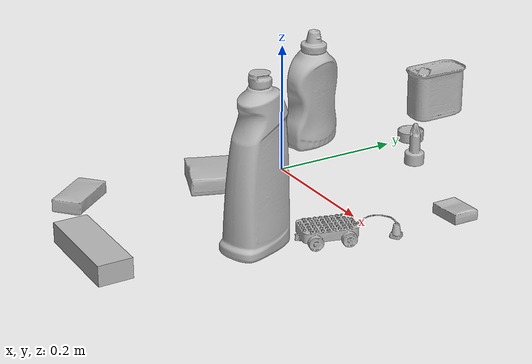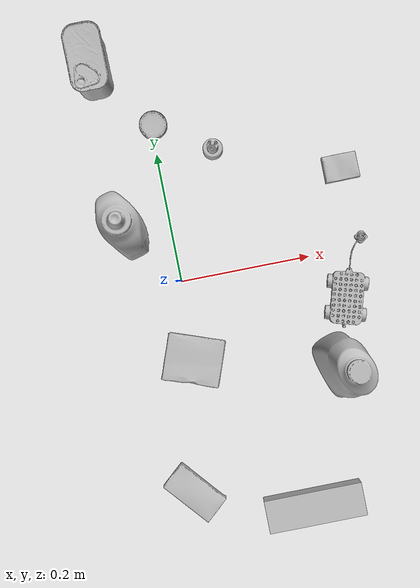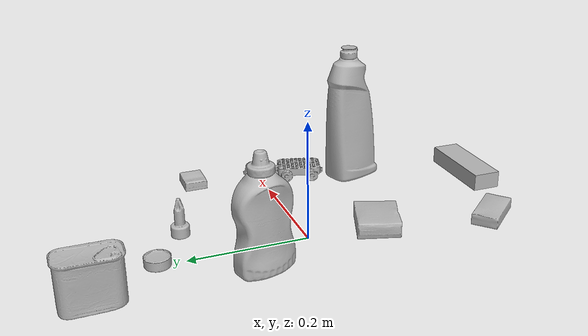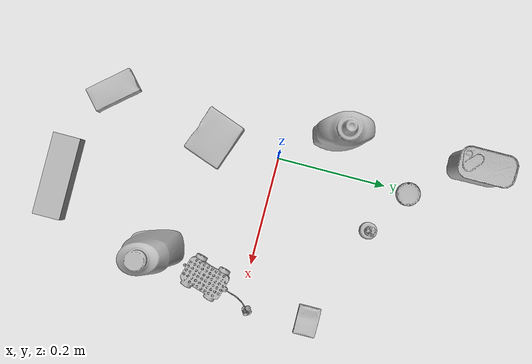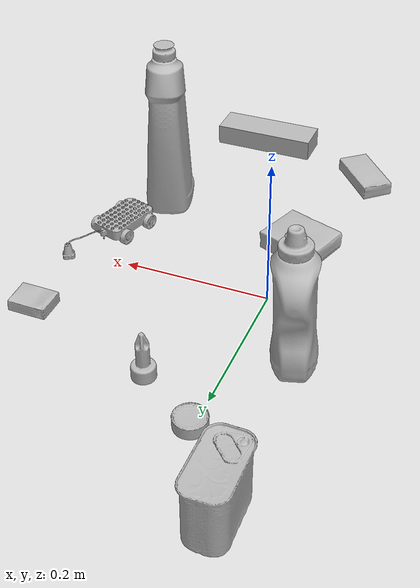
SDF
<sdf version="1.4">
  <world name="default">
    <light name="light1" type="point">
      <pose>0 0 1 0 0 0</pose>
      <diffuse>3 3 3 1</diffuse>
      <specular>3 3 3 1</specular>
    </light>
    <light name="light2" type="point">
      <pose>0 0.5 2 0 0 0</pose>
      <diffuse>1 1 1 1</diffuse>
      <specular>1 1 1 1</specular>
    </light>
    <light name="light3" type="point">
      <pose>0 0.5 2 0 0 0</pose>
      <diffuse>3 3 3 1</diffuse>
      <specular>3 3 3 1</specular>
    </light>
    <scene>
      <ambient>0.7 0.7 0.7</ambient>
    </scene>
    <model name="bottle1">
      <link name="link_bottle1">
        <collision name="default">
          <geometry>
            <mesh>
              <uri>model://bleach_cleanser/collision_meshes/collision.obj</uri>
              <scale>1.0 1.0 1.0</scale>
            </mesh>
          </geometry>
          <surface>
            <friction>
              <ode>
                <mu>0.5</mu>
                <mu2>0.5</mu2>
              </ode>
            </friction>
          <contact>
        <ode>
            <max_vel>0</max_vel>
            <min_depth>0.0001</min_depth>
            <kp>1e8</kp>
        </ode>
    </contact></surface>
        </collision>
        <visual name="default">
          <geometry>
            <mesh>
              <uri>model://bleach_cleanser/visual_meshes/visual.dae</uri>
              <scale>1.0 1.0 1.0</scale>
            </mesh>
          </geometry>
        </visual>
        <inertial>
          <mass>0.8435376882553101</mass>
          <pose>0.00012193185102660209 0.0037838835269212723 -0.02442161925137043 -0.0738167136291003 0.00042011570398771517 -0.0068750683244174</pose>
          <inertia>
            <ixx>0.0041056215</ixx>
            <iyy>0.0038258375</iyy>
            <izz>0.0007019545</izz>
            <ixy>0</ixy>
            <ixz>0</ixz>
            <iyz>0</iyz>
          </inertia>
        </inertial>
      </link>
      <pose>0.21380974352359772 -0.1699148565530777 0.1257738620042801 -0.0012072115885197795 0.0015688088605265646 0.33716499694576985</pose>
    </model>
    <model name="bottle2">
      <link name="link_bottle2">
        <collision name="default">
          <geometry>
            <mesh>
              <uri>model://mustard_bottle/collision_meshes/collision.obj</uri>
              <scale>1.0 1.0 1.0</scale>
            </mesh>
          </geometry>
          <surface>
            <friction>
              <ode>
                <mu>0.5</mu>
                <mu2>0.5</mu2>
              </ode>
            </friction>
          <contact>
        <ode>
            <max_vel>0</max_vel>
            <min_depth>0.0001</min_depth>
            <kp>1e8</kp>
        </ode>
    </contact></surface>
        </collision>
        <visual name="default">
          <geometry>
            <mesh>
              <uri>model://mustard_bottle/visual_meshes/visual.dae</uri>
              <scale>1.0 1.0 1.0</scale>
            </mesh>
          </geometry>
        </visual>
        <inertial>
          <mass>0.5862947106361389</mass>
          <pose>0.0005032453336752951 -0.00015647400869056582 -0.01747579500079155 0.0004182326333961274 0.0009465780125852031 0.02485369627950655</pose>
          <inertia>
            <ixx>0.0016280604</ixx>
            <iyy>0.001428485</iyy>
            <izz>0.00042907606</izz>
            <ixy>0</ixy>
            <ixz>0</ixz>
            <iyz>0</iyz>
          </inertia>
        </inertial>
      </link>
      <pose>-0.06615497916936874 0.09592682123184204 0.09568721801042557 -0.0014974353705398688 0.025964539032527496 0.2679959003558177</pose>
    </model>
    <model name="toy1">
      <link name="link_toy1">
        <collision name="default">
          <geometry>
            <mesh>
              <uri>model://d_toy_airplane/collision_meshes/collision.obj</uri>
              <scale>1.0 1.0 1.0</scale>
            </mesh>
          </geometry>
          <surface>
            <friction>
              <ode>
                <mu>0.5</mu>
                <mu2>0.5</mu2>
              </ode>
            </friction>
          <contact>
        <ode>
            <max_vel>0</max_vel>
            <min_depth>0.0001</min_depth>
            <kp>1e8</kp>
        </ode>
    </contact></surface>
        </collision>
        <visual name="default">
          <geometry>
            <mesh>
              <uri>model://d_toy_airplane/visual_meshes/visual.dae</uri>
              <scale>1.0 1.0 1.0</scale>
            </mesh>
          </geometry>
        </visual>
        <inertial>
          <mass>0.016342557966709137</mass>
          <pose>9.410292841494083e-05 -5.809347931062803e-05 -0.011728093959391117 0.0002665850352305412 0.004678995185611379 0.5193821656772198</pose>
          <inertia>
            <ixx>4.8991824e-06</ixx>
            <iyy>4.9028777e-06</iyy>
            <izz>1.4790946e-06</izz>
            <ixy>0</ixy>
            <ixz>0</ixz>
            <iyz>0</iyz>
          </inertia>
        </inertial>
      </link>
      <pose>0.08626087754964828 0.18998457491397858 0.03333916515111923 9.312494554675003e-05 -7.86083180582503e-05 1.2801024711055797</pose>
    </model>
    <model name="toy2">
      <link name="link_toy2">
        <collision name="default">
          <geometry>
            <mesh>
              <uri>model://g_lego_duplo/collision_meshes/collision.obj</uri>
              <scale>0.5 0.5 0.5</scale>
            </mesh>
          </geometry>
          <surface>
            <friction>
              <ode>
                <mu>0.5</mu>
                <mu2>0.5</mu2>
              </ode>
            </friction>
          <contact>
        <ode>
            <max_vel>0</max_vel>
            <min_depth>0.0001</min_depth>
            <kp>1e8</kp>
        </ode>
    </contact></surface>
        </collision>
        <visual name="default">
          <geometry>
            <mesh>
              <uri>model://g_lego_duplo/visual_meshes/visual.dae</uri>
              <scale>0.5 0.5 0.5</scale>
            </mesh>
          </geometry>
        </visual>
        <inertial>
          <mass>0.06075087562203407</mass>
          <pose>-0.02502383105456829 0.0008777320035733283 0.0019403373589739203 0.010962969944672394 0.038108282316868566 -0.09653022106038826</pose>
          <inertia>
            <ixx>2.2007183e-05</ixx>
            <iyy>6.65348e-05</iyy>
            <izz>8.323752e-05</izz>
            <ixy>0</ixy>
            <ixz>0</ixz>
            <iyz>0</iyz>
          </inertia>
        </inertial>
      </link>
      <pose>0.2526930868625641 -0.04533430188894272 0.014982683584094048 0.0017239199068153916 -0.004276245806742883 1.2902129044982937</pose>
    </model>
    <model name="can1">
      <link name="link_can1">
        <collision name="default">
          <geometry>
            <mesh>
              <uri>model://potted_meat_can/collision_meshes/collision.obj</uri>
              <scale>1.0 1.0 1.0</scale>
            </mesh>
          </geometry>
          <surface>
            <friction>
              <ode>
                <mu>0.5</mu>
                <mu2>0.5</mu2>
              </ode>
            </friction>
          <contact>
        <ode>
            <max_vel>0</max_vel>
            <min_depth>0.0001</min_depth>
            <kp>1e8</kp>
        </ode>
    </contact></surface>
        </collision>
        <visual name="default">
          <geometry>
            <mesh>
              <uri>model://potted_meat_can/visual_meshes/visual.dae</uri>
              <scale>1.0 1.0 1.0</scale>
            </mesh>
          </geometry>
        </visual>
        <inertial>
          <mass>0.20078136026859283</mass>
          <pose>0.00022888144303578883 -5.9891190176131204e-05 -0.0006367445457726717 -0.02809335636395505 -0.007232596981483405 0.015406261474000347</pose>
          <inertia>
            <ixx>0.0002582842</ixx>
            <iyy>0.00015692727</iyy>
            <izz>0.0001878526</izz>
            <ixy>0</ixy>
            <ixz>0</ixz>
            <iyz>0</iyz>
          </inertia>
        </inertial>
      </link>
      <pose>-0.07087311893701553 0.34815019369125366 0.042128004133701324 3.2131710431353216e-08 -5.6525392782841e-07 -0.0037236507891184644</pose>
    </model>
    <model name="can2">
      <link name="link_can2">
        <collision name="default">
          <geometry>
            <mesh>
              <uri>model://tuna_fish_can/collision_meshes/collision.obj</uri>
              <scale>0.5 0.5 0.5</scale>
            </mesh>
          </geometry>
          <surface>
            <friction>
              <ode>
                <mu>0.5</mu>
                <mu2>0.5</mu2>
              </ode>
            </friction>
          <contact>
        <ode>
            <max_vel>0</max_vel>
            <min_depth>0.0001</min_depth>
            <kp>1e8</kp>
        </ode>
    </contact></surface>
        </collision>
        <visual name="default">
          <geometry>
            <mesh>
              <uri>model://tuna_fish_can/visual_meshes/visual.dae</uri>
              <scale>0.5 0.5 0.5</scale>
            </mesh>
          </geometry>
        </visual>
        <inertial>
          <mass>0.014736190438270569</mass>
          <pose>-2.036184559983667e-05 -7.256420758494642e-06 -0.0005269023822620511 -0.0017944748482382063 0.00017166274907885265 0.24056368509195397</pose>
          <inertia>
            <ixx>1.992355e-06</ixx>
            <iyy>1.9840513e-06</iyy>
            <izz>3.409204e-06</izz>
            <ixy>0</ixy>
            <ixz>0</ixz>
            <iyz>0</iyz>
          </inertia>
        </inertial>
      </link>
      <pose>0.003790176473557949 0.24350705742835999 0.00851999968290329 -2.8545021690808567e-09 1.11708749973277e-08 -0.9762308405181103</pose>
    </model>
    <model name="box1">
      <link name="link_box1">
        <collision name="default">
          <geometry>
            <mesh>
              <uri>model://sugar_box/collision_meshes/collision.obj</uri>
              <scale>0.5 0.5 0.5</scale>
            </mesh>
          </geometry>
          <surface>
            <friction>
              <ode>
                <mu>0.5</mu>
                <mu2>0.5</mu2>
              </ode>
            </friction>
          <contact>
        <ode>
            <max_vel>0</max_vel>
            <min_depth>0.0001</min_depth>
            <kp>1e8</kp>
        </ode>
    </contact></surface>
        </collision>
        <visual name="default">
          <geometry>
            <mesh>
              <uri>model://sugar_box/visual_meshes/visual.dae</uri>
              <scale>0.5 0.5 0.5</scale>
            </mesh>
          </geometry>
        </visual>
        <inertial>
          <mass>0.12222740799188614</mass>
          <pose>0.0005171863595023751 1.9245549992774613e-05 -0.00018182404164690524 -0.000404625834306888 0.0010506637544316808 0.0026153790219515644</pose>
          <inertia>
            <ixx>2.5459884e-05</ixx>
            <iyy>8.229157e-05</iyy>
            <izz>9.851283e-05</izz>
            <ixy>0</ixy>
            <ixz>0</ixz>
            <iyz>0</iyz>
          </inertia>
        </inertial>
      </link>
      <pose>-0.042849984019994736 -0.31933605670928955 0.011399302631616592 0.0007757669971249779 -0.023433002226143668 -0.8567002842575342</pose>
    </model>
    <model name="box2">
      <link name="link_box2">
        <collision name="default">
          <geometry>
            <mesh>
              <uri>model://jenga/collision_meshes/collision.obj</uri>
              <scale>1.0 1.0 1.0</scale>
            </mesh>
          </geometry>
          <surface>
            <friction>
              <ode>
                <mu>0.5</mu>
                <mu2>0.5</mu2>
              </ode>
            </friction>
          <contact>
        <ode>
            <max_vel>0</max_vel>
            <min_depth>0.0001</min_depth>
            <kp>1e8</kp>
        </ode>
    </contact></surface>
        </collision>
        <visual name="default">
          <geometry>
            <mesh>
              <uri>model://jenga/visual_meshes/visual.dae</uri>
              <scale>1.0 1.0 1.0</scale>
            </mesh>
          </geometry>
        </visual>
        <inertial>
          <mass>0.17645145952701569</mass>
          <pose>-2.502855807051674e-07 -0.00010250011109746993 -4.0923405322246253e-05 0.0 -7.342155186052628e-07 0.0</pose>
          <inertia>
            <ixx>4.8828406e-05</ixx>
            <iyy>0.00033085994</iyy>
            <izz>0.00035322108</izz>
            <ixy>0</ixy>
            <ixz>0</ixz>
            <iyz>0</iyz>
          </inertia>
        </inertial>
      </link>
      <pose>0.1327250450849533 -0.37514472007751465 0.014999999664723873 1.585052628326987e-08 -1.6239700867951267e-09 -0.0007087531597292369</pose>
    </model>
    <model name="box3">
      <link name="link_box3">
        <collision name="default">
          <geometry>
            <mesh>
              <uri>model://gelatin_box/collision_meshes/collision.obj</uri>
              <scale>1.0 1.0 1.0</scale>
            </mesh>
          </geometry>
          <surface>
            <friction>
              <ode>
                <mu>0.5</mu>
                <mu2>0.5</mu2>
              </ode>
            </friction>
          <contact>
        <ode>
            <max_vel>0</max_vel>
            <min_depth>0.0001</min_depth>
            <kp>1e8</kp>
        </ode>
    </contact></surface>
        </collision>
        <visual name="default">
          <geometry>
            <mesh>
              <uri>model://gelatin_box/visual_meshes/visual.dae</uri>
              <scale>1.0 1.0 1.0</scale>
            </mesh>
          </geometry>
        </visual>
        <inertial>
          <mass>0.13059620559215546</mass>
          <pose>0.0004319618456065655 0.00011156871914863586 -0.0003640321083366871 -0.0010503721928909568 -0.00475581775899517 0.01644055574591333</pose>
          <inertia>
            <ixx>9.219027e-05</ixx>
            <iyy>6.585102e-05</iyy>
            <izz>0.00014033413</izz>
            <ixy>0</ixy>
            <ixz>0</ixz>
            <iyz>0</iyz>
          </inertia>
        </inertial>
      </link>
      <pose>-0.005123432260006666 -0.12070583552122116 0.015168311074376106 0.005597451635838315 -0.007304545478263646 -1.9235388508309044</pose>
    </model>
    <model name="box4">
      <link name="link_box4">
        <collision name="default">
          <geometry>
            <mesh>
              <uri>model://cracker_box/collision_meshes/collision.obj</uri>
              <scale>0.25 0.25 0.25</scale>
            </mesh>
          </geometry>
          <surface>
            <friction>
              <ode>
                <mu>0.5</mu>
                <mu2>0.5</mu2>
              </ode>
            </friction>
          <contact>
        <ode>
            <max_vel>0</max_vel>
            <min_depth>0.0001</min_depth>
            <kp>1e8</kp>
        </ode>
    </contact></surface>
        </collision>
        <visual name="default">
          <geometry>
            <mesh>
              <uri>model://cracker_box/visual_meshes/visual.dae</uri>
              <scale>0.25 0.25 0.25</scale>
            </mesh>
          </geometry>
        </visual>
        <inertial>
          <mass>0.04771818593144417</mass>
          <pose>0.0002366032567806542 6.358561950037256e-05 -0.00042573839891701937 -0.00031620769108308636 -0.011106489600173282 0.0025467959336867136</pose>
          <inertia>
            <ixx>7.5858593e-06</ixx>
            <iyy>1.2525745e-05</iyy>
            <izz>1.7875387e-05</izz>
            <ixy>0</ixy>
            <ixz>0</ixz>
            <iyz>0</iyz>
          </inertia>
        </inertial>
      </link>
      <pose>0.2730560600757599 0.12452144175767899 0.009096028283238411 -0.014050556672780925 -0.0050165797669078 0.00024119842415397635</pose>
    </model>
  <physics type="ode">
      <max_contacts>50</max_contacts>
      <ode>
        <solver>
          <type>quick</type>
          <iters>75</iters>
        </solver>
        <constraints>
          <contact_max_correcting_vel>0</contact_max_correcting_vel>
          <contact_surface_layer>0</contact_surface_layer>
        </constraints>
      </ode>
    </physics></world>
</sdf>
